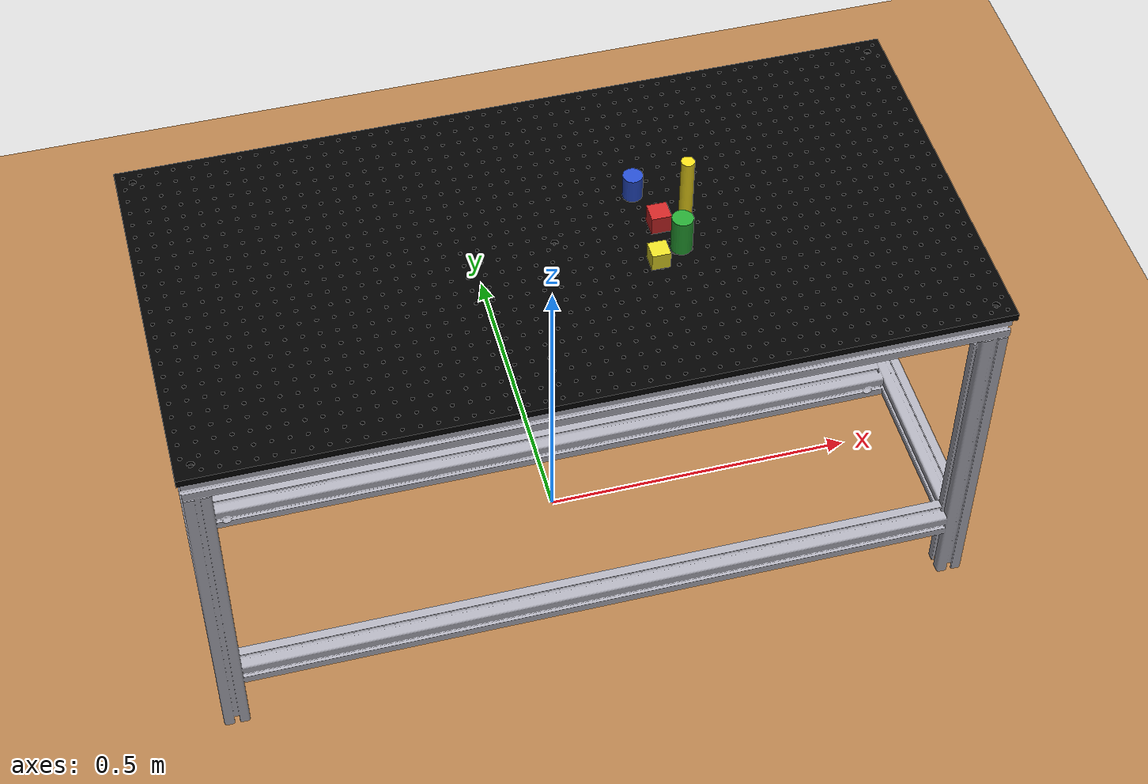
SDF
<sdf version="1.6">
 <world name="default">
  <physics type="ode">
   <max_step_size>0.001</max_step_size>
   <real_time_factor>1.0</real_time_factor>
   <real_time_update_rate>1000</real_time_update_rate>
   <ode>
    <solver><type>quick</type><iters>200</iters><sor>1.3</sor></solver>
    <constraints>
     <cfm>0.00001</cfm>
     <erp>0.2</erp>
     <contact_max_correcting_vel>100.0</contact_max_correcting_vel>
     <contact_surface_layer>0.001</contact_surface_layer>
    </constraints>
   </ode>
  </physics>
  <gravity>0 0 -9.81</gravity>
  <scene>
   <ambient>0.62 0.62 0.65 1.0</ambient>
   <background>0.82 0.84 0.88 1.0</background>
   <shadows>true</shadows>
   <grid>false</grid>
  </scene>
  <light type="directional" name="sun">
   <pose>0.5 0.5 5.0 0 0 0</pose>
   <diffuse>0.92 0.92 0.90 1</diffuse>
   <specular>0.3 0.3 0.3 1</specular>
   <direction>-0.4 -0.3 -1.0</direction>
  </light>
  <light type="spot" name="table_spot">
   <pose>0.0 0.0 2.2 0 0 0</pose>
   <diffuse>0.85 0.82 0.75 1</diffuse>
   <specular>0.4 0.4 0.4 1</specular>
   <attenuation>
    <range>4.5</range>
    <constant>0.4</constant>
    <linear>0.05</linear>
    <quadratic>0.01</quadratic>
   </attenuation>
   <direction>0 0 -1</direction>
   <spot><inner_angle>0.9</inner_angle><outer_angle>1.5</outer_angle><falloff>1.0</falloff></spot>
   <cast_shadows>false</cast_shadows>
  </light>
  <model name="overhead_camera_model">
   <static>true</static>
   <pose>0.0 0.0 1.45 0 1.5708 0</pose>
   <link name="camera_link">
    <sensor name="top_camera" type="camera">
     <always_on>true</always_on>
     <update_rate>30</update_rate>
     <visualize>false</visualize>
     <camera>
      <horizontal_fov>1.25</horizontal_fov>
      <image><width>1920</width><height>1080</height><format>R8G8B8</format></image>
      <clip><near>0.01</near><far>10.0</far></clip>
     </camera>
     <plugin name="overhead_camera_driver" filename="libgazebo_ros_camera.so">
      <ros>
       <remapping>~/image_raw:=/top_camera/image_raw</remapping>
       <remapping>~/camera_info:=/top_camera/camera_info</remapping>
      </ros>
      <camera_name>top_camera</camera_name>
      <frame_name>top_camera_link</frame_name>
     </plugin>
    </sensor>
   </link>
  </model>
  <model name="side_inspection_rig">
   <static>true</static>
   <pose>0.52 -0.42 0.95 0 0.40 2.45</pose>
   <link name="link">
    <sensor name="side_camera" type="camera">
     <always_on>true</always_on>
     <update_rate>30</update_rate>
     <visualize>false</visualize>
     <camera>
      <horizontal_fov>1.15</horizontal_fov>
      <image><width>1280</width><height>720</height><format>R8G8B8</format></image>
      <clip><near>0.01</near><far>10.0</far></clip>
     </camera>
     <plugin name="side_camera_driver" filename="libgazebo_ros_camera.so">
      <ros>
       <remapping>~/image_raw:=/side_camera/image_raw</remapping>
       <remapping>~/camera_info:=/side_camera/camera_info</remapping>
      </ros>
      <camera_name>side_camera</camera_name>
      <frame_name>side_camera_link</frame_name>
     </plugin>
    </sensor>
   </link>
  </model>
  <model name="ground_plane">
   <static>true</static>
   <link name="link">
    <collision name="collision">
     <geometry><plane><normal>0 0 1</normal><size>20 20</size></plane></geometry>
     <surface><friction><ode><mu>100</mu><mu2>50</mu2></ode></friction></surface>
    </collision>
    <visual name="visual">
     <cast_shadows>false</cast_shadows>
     <geometry><plane><normal>0 0 1</normal><size>20 20</size></plane></geometry>
     <material>
      <script><uri>file://media/materials/scripts/gazebo.material</uri><name>Gazebo/WoodFloor</name></script>
     </material>
    </visual>
   </link>
  </model>
  <model name="optical_table">
   <static>true</static>
   <pose>0.60 0.30 0 0 0 0</pose>
   <link name="link">
    <collision name="collision">
     <pose>-0.60 -0.30 0.304 0 0 0</pose>
     <geometry><box><size>1.20 0.60 0.608</size></box></geometry>
     <surface><friction><ode><mu>0.8</mu><mu2>0.8</mu2></ode></friction></surface>
    </collision>
    <visual name="visual">
     <geometry>
      <mesh>
       <uri>file:///home/gaminizer/Projects/ARIA/install/arm_description/share/arm_description/meshes/table/complete_table.dae</uri>
      </mesh>
     </geometry>
    </visual>
   </link>
  </model>
  <model name="red_cube">
   <pose>0.16 0.0 0.623 0 0 0</pose>
   <link name="body">
    <inertial>
     <mass>0.030</mass>
     <inertia><ixx>4.5e-6</ixx><ixy>0</ixy><ixz>0</ixz><iyy>4.5e-6</iyy><iyz>0</iyz><izz>4.5e-6</izz></inertia>
    </inertial>
    <collision name="c">
     <geometry><box><size>0.030 0.030 0.030</size></box></geometry>
     <surface><friction><ode><mu>1.0</mu><mu2>1.0</mu2></ode></friction></surface>
    </collision>
    <visual name="v">
     <geometry><box><size>0.030 0.030 0.030</size></box></geometry>
     <material>
      <script><uri>file://media/materials/scripts/gazebo.material</uri><name>Gazebo/Red</name></script>
     </material>
    </visual>
   </link>
  </model>
  <model name="yellow_block">
   <pose>0.14 -0.07 0.622 0 0 0</pose>
   <link name="body">
    <inertial>
     <mass>0.025</mass>
     <inertia><ixx>3.2e-6</ixx><ixy>0</ixy><ixz>0</ixz><iyy>3.2e-6</iyy><iyz>0</iyz><izz>3.2e-6</izz></inertia>
    </inertial>
    <collision name="c">
     <geometry><box><size>0.028 0.028 0.028</size></box></geometry>
     <surface><friction><ode><mu>1.0</mu><mu2>1.0</mu2></ode></friction></surface>
    </collision>
    <visual name="v">
     <geometry><box><size>0.028 0.028 0.028</size></box></geometry>
     <material>
      <script><uri>file://media/materials/scripts/gazebo.material</uri><name>Gazebo/Yellow</name></script>
     </material>
    </visual>
   </link>
  </model>
  <model name="blue_cylinder">
   <pose>0.14 0.07 0.628 0 0 0</pose>
   <link name="body">
    <inertial>
     <mass>0.030</mass>
     <inertia><ixx>5.6e-6</ixx><ixy>0</ixy><ixz>0</ixz><iyy>5.6e-6</iyy><iyz>0</iyz><izz>3.4e-6</izz></inertia>
    </inertial>
    <collision name="c">
     <geometry><cylinder><radius>0.015</radius><length>0.040</length></cylinder></geometry>
     <surface><friction><ode><mu>1.0</mu><mu2>1.0</mu2></ode></friction></surface>
    </collision>
    <visual name="v">
     <geometry><cylinder><radius>0.015</radius><length>0.040</length></cylinder></geometry>
     <material>
      <script><uri>file://media/materials/scripts/gazebo.material</uri><name>Gazebo/Blue</name></script>
     </material>
    </visual>
   </link>
  </model>
  <model name="mini_can">
   <pose>0.18 -0.05 0.638 0 0 0</pose>
   <link name="body">
    <inertial>
     <mass>0.035</mass>
     <inertia><ixx>1.2e-5</ixx><ixy>0</ixy><ixz>0</ixz><iyy>1.2e-5</iyy><iyz>0</iyz><izz>4.5e-6</izz></inertia>
    </inertial>
    <collision name="c">
     <geometry><cylinder><radius>0.016</radius><length>0.060</length></cylinder></geometry>
     <surface><friction><ode><mu>1.0</mu><mu2>1.0</mu2></ode></friction></surface>
    </collision>
    <visual name="v">
     <geometry><cylinder><radius>0.016</radius><length>0.060</length></cylinder></geometry>
     <material>
      <script><uri>file://media/materials/scripts/gazebo.material</uri><name>Gazebo/Green</name></script>
     </material>
    </visual>
   </link>
  </model>
  <model name="banana">
   <pose>0.20 0.00 0.668 0 0 0</pose>
   <link name="body">
    <inertial>
     <mass>0.040</mass>
     <inertia><ixx>4.2e-5</ixx><ixy>0</ixy><ixz>0</ixz><iyy>4.2e-5</iyy><iyz>0</iyz><izz>2.0e-6</izz></inertia>
    </inertial>
    <collision name="c">
     <geometry><cylinder><radius>0.010</radius><length>0.120</length></cylinder></geometry>
     <surface><friction><ode><mu>1.0</mu><mu2>1.0</mu2></ode></friction></surface>
    </collision>
    <visual name="v">
     <geometry><cylinder><radius>0.010</radius><length>0.120</length></cylinder></geometry>
     <material>
      <ambient>0.95 0.85 0.10 1</ambient>
      <diffuse>0.95 0.85 0.10 1</diffuse>
      <specular>0.4 0.35 0.05 1</specular>
     </material>
    </visual>
   </link>
  </model>
  <plugin name="gazebo_ros_state" filename="libgazebo_ros_state.so">
   <ros><namespace>/gazebo</namespace></ros>
   <update_rate>50.0</update_rate>
  </plugin>
 </world>
</sdf>
